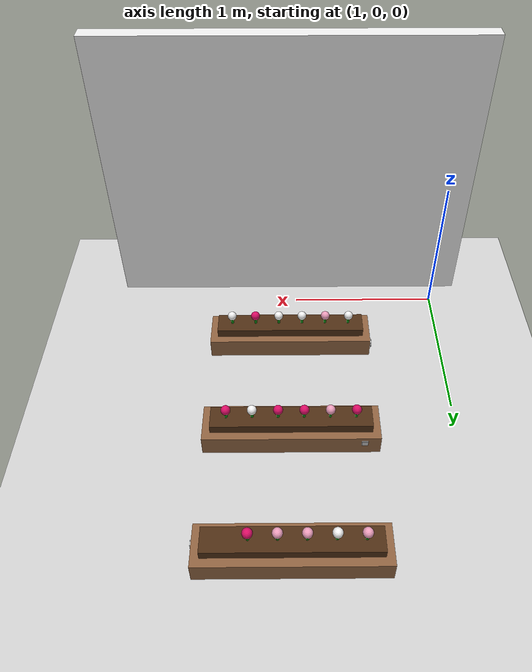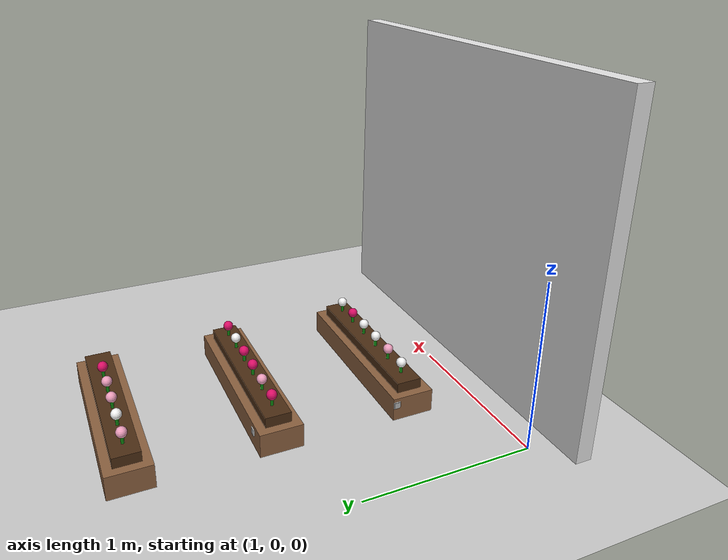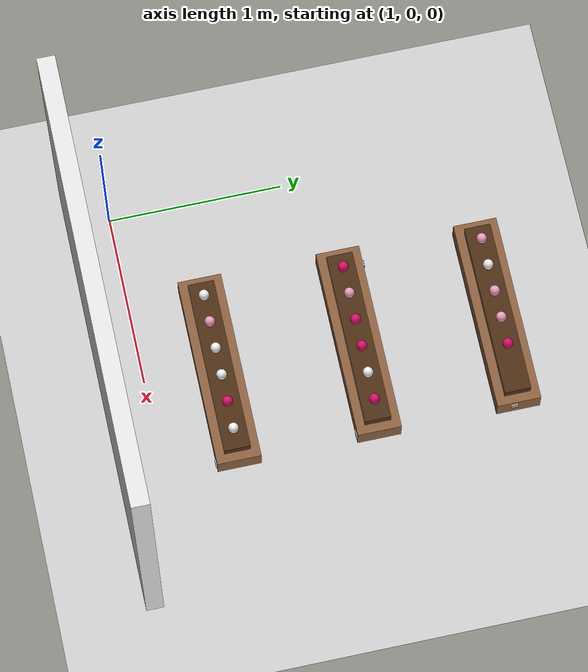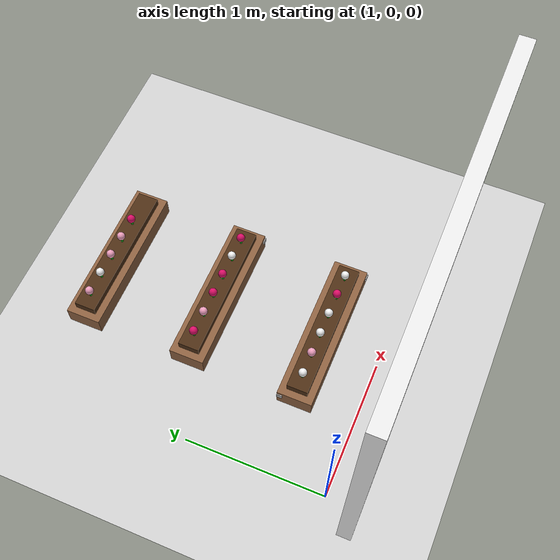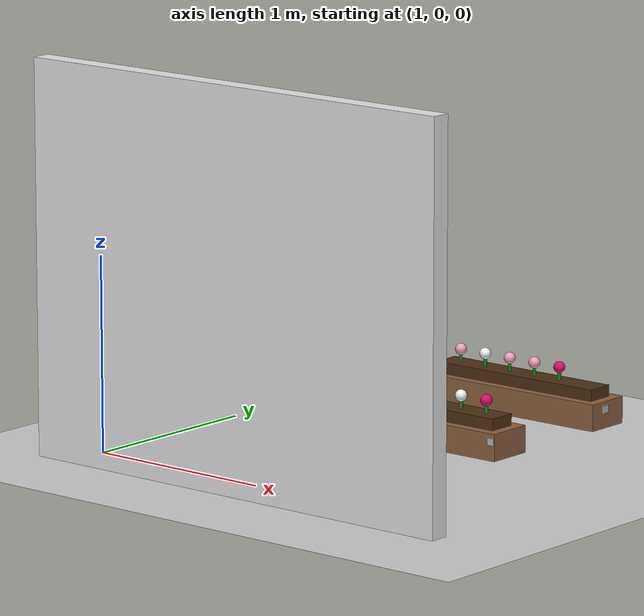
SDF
<sdf version="1.6">
 <world name="greenhouse">
  <include><uri>model://sun</uri></include>
  <include><uri>model://ground_plane</uri></include>
  <model name="wall_south">
   <static>true</static>
   <pose>2.0500 -0.2000 1.0000 0 0 0</pose>
   <link name="link">
    <collision name="collision"><geometry><box><size>2.5000 0.1000 2.0000</size></box></geometry></collision>
    <visual name="visual">
     <geometry><box><size>2.5000 0.1000 2.0000</size></box></geometry>
     <material><ambient>0.85 0.85 0.85 1</ambient><diffuse>0.90 0.90 0.90 1</diffuse></material>
    </visual>
   </link>
  </model>
  <model name="table10">
   <static>true</static>
   <pose>2.0500 0.4250 0.0700 0 0 0</pose>
   <link name="link">
    <collision name="collision"><geometry><box><size>1.1000 0.2500 0.1400</size></box></geometry></collision>
    <visual name="visual">
     <geometry><box><size>1.1000 0.2500 0.1400</size></box></geometry>
     <material><ambient>0.45 0.30 0.20 1</ambient><diffuse>0.55 0.38 0.25 1</diffuse></material>
    </visual>
   </link>
  </model>
  <model name="table8">
   <static>true</static>
   <pose>2.0500 2.0250 0.0700 0 0 0</pose>
   <link name="link">
    <collision name="collision"><geometry><box><size>1.1000 0.2500 0.1400</size></box></geometry></collision>
    <visual name="visual">
     <geometry><box><size>1.1000 0.2500 0.1400</size></box></geometry>
     <material><ambient>0.45 0.30 0.20 1</ambient><diffuse>0.55 0.38 0.25 1</diffuse></material>
    </visual>
   </link>
  </model>
  <model name="table9">
   <static>true</static>
   <pose>2.0500 1.2250 0.0700 0 0 0</pose>
   <link name="link">
    <collision name="collision"><geometry><box><size>1.1000 0.2500 0.1400</size></box></geometry></collision>
    <visual name="visual">
     <geometry><box><size>1.1000 0.2500 0.1400</size></box></geometry>
     <material><ambient>0.45 0.30 0.20 1</ambient><diffuse>0.55 0.38 0.25 1</diffuse></material>
    </visual>
   </link>
  </model>
  <model name="trough_table_1">
   <static>true</static>
   <pose>2.0500 0.4250 0.1700 0 0 0</pose>
   <link name="link">
    <visual name="visual">
     <geometry><box><size>1.0000 0.1500 0.0600</size></box></geometry>
     <material><ambient>0.20 0.12 0.05 1</ambient><diffuse>0.30 0.18 0.08 1</diffuse></material>
    </visual>
   </link>
  </model>
  <model name="flower_6_white">
   <static>true</static>
   <pose>1.6500 0.4250 0 0 0 0</pose>
   <link name="link">
    <visual name="stem">
     <pose>0 0 0.2250 0 0 0</pose>
     <geometry><cylinder><radius>0.009</radius><length>0.0500</length></cylinder></geometry>
     <material><ambient>0.05 0.40 0.05 1</ambient><diffuse>0.05 0.52 0.05 1</diffuse></material>
    </visual>
    <visual name="blossom">
     <pose>0 0 0.2665 0 0 0</pose>
     <geometry><sphere><radius>0.0300</radius></sphere></geometry>
     <material>
      <ambient>0.42 0.42 0.42 1</ambient>
      <diffuse>0.95 0.95 0.95 1</diffuse>
      <emissive>0.40 0.40 0.40 1</emissive>
     </material>
    </visual>
   </link>
  </model>
  <model name="flower_7_pink">
   <static>true</static>
   <pose>1.8100 0.4250 0 0 0 0</pose>
   <link name="link">
    <visual name="stem">
     <pose>0 0 0.2250 0 0 0</pose>
     <geometry><cylinder><radius>0.009</radius><length>0.0500</length></cylinder></geometry>
     <material><ambient>0.05 0.40 0.05 1</ambient><diffuse>0.05 0.52 0.05 1</diffuse></material>
    </visual>
    <visual name="blossom">
     <pose>0 0 0.2665 0 0 0</pose>
     <geometry><sphere><radius>0.0300</radius></sphere></geometry>
     <material>
      <ambient>0.40 0.26 0.31 1</ambient>
      <diffuse>0.93 0.62 0.74 1</diffuse>
      <emissive>0.18 0.06 0.11 1</emissive>
     </material>
    </visual>
   </link>
  </model>
  <model name="flower_8_white">
   <static>true</static>
   <pose>1.9700 0.4250 0 0 0 0</pose>
   <link name="link">
    <visual name="stem">
     <pose>0 0 0.2250 0 0 0</pose>
     <geometry><cylinder><radius>0.009</radius><length>0.0500</length></cylinder></geometry>
     <material><ambient>0.05 0.40 0.05 1</ambient><diffuse>0.05 0.52 0.05 1</diffuse></material>
    </visual>
    <visual name="blossom">
     <pose>0 0 0.2665 0 0 0</pose>
     <geometry><sphere><radius>0.0300</radius></sphere></geometry>
     <material>
      <ambient>0.42 0.42 0.42 1</ambient>
      <diffuse>0.95 0.95 0.95 1</diffuse>
      <emissive>0.40 0.40 0.40 1</emissive>
     </material>
    </visual>
   </link>
  </model>
  <model name="flower_9_white">
   <static>true</static>
   <pose>2.1300 0.4250 0 0 0 0</pose>
   <link name="link">
    <visual name="stem">
     <pose>0 0 0.2250 0 0 0</pose>
     <geometry><cylinder><radius>0.009</radius><length>0.0500</length></cylinder></geometry>
     <material><ambient>0.05 0.40 0.05 1</ambient><diffuse>0.05 0.52 0.05 1</diffuse></material>
    </visual>
    <visual name="blossom">
     <pose>0 0 0.2665 0 0 0</pose>
     <geometry><sphere><radius>0.0300</radius></sphere></geometry>
     <material>
      <ambient>0.42 0.42 0.42 1</ambient>
      <diffuse>0.95 0.95 0.95 1</diffuse>
      <emissive>0.40 0.40 0.40 1</emissive>
     </material>
    </visual>
   </link>
  </model>
  <model name="flower_10_red">
   <static>true</static>
   <pose>2.2900 0.4250 0 0 0 0</pose>
   <link name="link">
    <visual name="stem">
     <pose>0 0 0.2250 0 0 0</pose>
     <geometry><cylinder><radius>0.009</radius><length>0.0500</length></cylinder></geometry>
     <material><ambient>0.05 0.40 0.05 1</ambient><diffuse>0.05 0.52 0.05 1</diffuse></material>
    </visual>
    <visual name="blossom">
     <pose>0 0 0.2665 0 0 0</pose>
     <geometry><sphere><radius>0.0300</radius></sphere></geometry>
     <material>
      <ambient>0.32 0.02 0.15 1</ambient>
      <diffuse>0.86 0.05 0.40 1</diffuse>
      <emissive>0.40 0.00 0.18 1</emissive>
     </material>
    </visual>
   </link>
  </model>
  <model name="flower_11_white">
   <static>true</static>
   <pose>2.4500 0.4250 0 0 0 0</pose>
   <link name="link">
    <visual name="stem">
     <pose>0 0 0.2250 0 0 0</pose>
     <geometry><cylinder><radius>0.009</radius><length>0.0500</length></cylinder></geometry>
     <material><ambient>0.05 0.40 0.05 1</ambient><diffuse>0.05 0.52 0.05 1</diffuse></material>
    </visual>
    <visual name="blossom">
     <pose>0 0 0.2665 0 0 0</pose>
     <geometry><sphere><radius>0.0300</radius></sphere></geometry>
     <material>
      <ambient>0.42 0.42 0.42 1</ambient>
      <diffuse>0.95 0.95 0.95 1</diffuse>
      <emissive>0.40 0.40 0.40 1</emissive>
     </material>
    </visual>
   </link>
  </model>
  <model name="trough_table_8">
   <static>true</static>
   <pose>2.0500 2.0250 0.1700 0 0 0</pose>
   <link name="link">
    <visual name="visual">
     <geometry><box><size>1.0000 0.1500 0.0600</size></box></geometry>
     <material><ambient>0.20 0.12 0.05 1</ambient><diffuse>0.30 0.18 0.08 1</diffuse></material>
    </visual>
   </link>
  </model>
  <model name="flower_50_pink">
   <static>true</static>
   <pose>1.6500 2.0250 0 0 0 0</pose>
   <link name="link">
    <visual name="stem">
     <pose>0 0 0.2250 0 0 0</pose>
     <geometry><cylinder><radius>0.009</radius><length>0.0500</length></cylinder></geometry>
     <material><ambient>0.05 0.40 0.05 1</ambient><diffuse>0.05 0.52 0.05 1</diffuse></material>
    </visual>
    <visual name="blossom">
     <pose>0 0 0.2665 0 0 0</pose>
     <geometry><sphere><radius>0.0300</radius></sphere></geometry>
     <material>
      <ambient>0.40 0.26 0.31 1</ambient>
      <diffuse>0.93 0.62 0.74 1</diffuse>
      <emissive>0.18 0.06 0.11 1</emissive>
     </material>
    </visual>
   </link>
  </model>
  <model name="flower_51_white">
   <static>true</static>
   <pose>1.8100 2.0250 0 0 0 0</pose>
   <link name="link">
    <visual name="stem">
     <pose>0 0 0.2250 0 0 0</pose>
     <geometry><cylinder><radius>0.009</radius><length>0.0500</length></cylinder></geometry>
     <material><ambient>0.05 0.40 0.05 1</ambient><diffuse>0.05 0.52 0.05 1</diffuse></material>
    </visual>
    <visual name="blossom">
     <pose>0 0 0.2665 0 0 0</pose>
     <geometry><sphere><radius>0.0300</radius></sphere></geometry>
     <material>
      <ambient>0.42 0.42 0.42 1</ambient>
      <diffuse>0.95 0.95 0.95 1</diffuse>
      <emissive>0.40 0.40 0.40 1</emissive>
     </material>
    </visual>
   </link>
  </model>
  <model name="flower_52_pink">
   <static>true</static>
   <pose>1.9700 2.0250 0 0 0 0</pose>
   <link name="link">
    <visual name="stem">
     <pose>0 0 0.2250 0 0 0</pose>
     <geometry><cylinder><radius>0.009</radius><length>0.0500</length></cylinder></geometry>
     <material><ambient>0.05 0.40 0.05 1</ambient><diffuse>0.05 0.52 0.05 1</diffuse></material>
    </visual>
    <visual name="blossom">
     <pose>0 0 0.2665 0 0 0</pose>
     <geometry><sphere><radius>0.0300</radius></sphere></geometry>
     <material>
      <ambient>0.40 0.26 0.31 1</ambient>
      <diffuse>0.93 0.62 0.74 1</diffuse>
      <emissive>0.18 0.06 0.11 1</emissive>
     </material>
    </visual>
   </link>
  </model>
  <model name="flower_53_pink">
   <static>true</static>
   <pose>2.1300 2.0250 0 0 0 0</pose>
   <link name="link">
    <visual name="stem">
     <pose>0 0 0.2250 0 0 0</pose>
     <geometry><cylinder><radius>0.009</radius><length>0.0500</length></cylinder></geometry>
     <material><ambient>0.05 0.40 0.05 1</ambient><diffuse>0.05 0.52 0.05 1</diffuse></material>
    </visual>
    <visual name="blossom">
     <pose>0 0 0.2665 0 0 0</pose>
     <geometry><sphere><radius>0.0300</radius></sphere></geometry>
     <material>
      <ambient>0.40 0.26 0.31 1</ambient>
      <diffuse>0.93 0.62 0.74 1</diffuse>
      <emissive>0.18 0.06 0.11 1</emissive>
     </material>
    </visual>
   </link>
  </model>
  <model name="flower_54_red">
   <static>true</static>
   <pose>2.2900 2.0250 0 0 0 0</pose>
   <link name="link">
    <visual name="stem">
     <pose>0 0 0.2250 0 0 0</pose>
     <geometry><cylinder><radius>0.009</radius><length>0.0500</length></cylinder></geometry>
     <material><ambient>0.05 0.40 0.05 1</ambient><diffuse>0.05 0.52 0.05 1</diffuse></material>
    </visual>
    <visual name="blossom">
     <pose>0 0 0.2665 0 0 0</pose>
     <geometry><sphere><radius>0.0300</radius></sphere></geometry>
     <material>
      <ambient>0.32 0.02 0.15 1</ambient>
      <diffuse>0.86 0.05 0.40 1</diffuse>
      <emissive>0.40 0.00 0.18 1</emissive>
     </material>
    </visual>
   </link>
  </model>
  <model name="trough_table_9">
   <static>true</static>
   <pose>2.0500 1.2250 0.1700 0 0 0</pose>
   <link name="link">
    <visual name="visual">
     <geometry><box><size>1.0000 0.1500 0.0600</size></box></geometry>
     <material><ambient>0.20 0.12 0.05 1</ambient><diffuse>0.30 0.18 0.08 1</diffuse></material>
    </visual>
   </link>
  </model>
  <model name="flower_56_red">
   <static>true</static>
   <pose>1.6500 1.2250 0 0 0 0</pose>
   <link name="link">
    <visual name="stem">
     <pose>0 0 0.2250 0 0 0</pose>
     <geometry><cylinder><radius>0.009</radius><length>0.0500</length></cylinder></geometry>
     <material><ambient>0.05 0.40 0.05 1</ambient><diffuse>0.05 0.52 0.05 1</diffuse></material>
    </visual>
    <visual name="blossom">
     <pose>0 0 0.2665 0 0 0</pose>
     <geometry><sphere><radius>0.0300</radius></sphere></geometry>
     <material>
      <ambient>0.32 0.02 0.15 1</ambient>
      <diffuse>0.86 0.05 0.40 1</diffuse>
      <emissive>0.40 0.00 0.18 1</emissive>
     </material>
    </visual>
   </link>
  </model>
  <model name="flower_57_pink">
   <static>true</static>
   <pose>1.8100 1.2250 0 0 0 0</pose>
   <link name="link">
    <visual name="stem">
     <pose>0 0 0.2250 0 0 0</pose>
     <geometry><cylinder><radius>0.009</radius><length>0.0500</length></cylinder></geometry>
     <material><ambient>0.05 0.40 0.05 1</ambient><diffuse>0.05 0.52 0.05 1</diffuse></material>
    </visual>
    <visual name="blossom">
     <pose>0 0 0.2665 0 0 0</pose>
     <geometry><sphere><radius>0.0300</radius></sphere></geometry>
     <material>
      <ambient>0.40 0.26 0.31 1</ambient>
      <diffuse>0.93 0.62 0.74 1</diffuse>
      <emissive>0.18 0.06 0.11 1</emissive>
     </material>
    </visual>
   </link>
  </model>
  <model name="flower_58_red">
   <static>true</static>
   <pose>1.9700 1.2250 0 0 0 0</pose>
   <link name="link">
    <visual name="stem">
     <pose>0 0 0.2250 0 0 0</pose>
     <geometry><cylinder><radius>0.009</radius><length>0.0500</length></cylinder></geometry>
     <material><ambient>0.05 0.40 0.05 1</ambient><diffuse>0.05 0.52 0.05 1</diffuse></material>
    </visual>
    <visual name="blossom">
     <pose>0 0 0.2665 0 0 0</pose>
     <geometry><sphere><radius>0.0300</radius></sphere></geometry>
     <material>
      <ambient>0.32 0.02 0.15 1</ambient>
      <diffuse>0.86 0.05 0.40 1</diffuse>
      <emissive>0.40 0.00 0.18 1</emissive>
     </material>
    </visual>
   </link>
  </model>
  <model name="flower_59_red">
   <static>true</static>
   <pose>2.1300 1.2250 0 0 0 0</pose>
   <link name="link">
    <visual name="stem">
     <pose>0 0 0.2250 0 0 0</pose>
     <geometry><cylinder><radius>0.009</radius><length>0.0500</length></cylinder></geometry>
     <material><ambient>0.05 0.40 0.05 1</ambient><diffuse>0.05 0.52 0.05 1</diffuse></material>
    </visual>
    <visual name="blossom">
     <pose>0 0 0.2665 0 0 0</pose>
     <geometry><sphere><radius>0.0300</radius></sphere></geometry>
     <material>
      <ambient>0.32 0.02 0.15 1</ambient>
      <diffuse>0.86 0.05 0.40 1</diffuse>
      <emissive>0.40 0.00 0.18 1</emissive>
     </material>
    </visual>
   </link>
  </model>
  <model name="flower_60_white">
   <static>true</static>
   <pose>2.2900 1.2250 0 0 0 0</pose>
   <link name="link">
    <visual name="stem">
     <pose>0 0 0.2250 0 0 0</pose>
     <geometry><cylinder><radius>0.009</radius><length>0.0500</length></cylinder></geometry>
     <material><ambient>0.05 0.40 0.05 1</ambient><diffuse>0.05 0.52 0.05 1</diffuse></material>
    </visual>
    <visual name="blossom">
     <pose>0 0 0.2665 0 0 0</pose>
     <geometry><sphere><radius>0.0300</radius></sphere></geometry>
     <material>
      <ambient>0.42 0.42 0.42 1</ambient>
      <diffuse>0.95 0.95 0.95 1</diffuse>
      <emissive>0.40 0.40 0.40 1</emissive>
     </material>
    </visual>
   </link>
  </model>
  <model name="flower_61_red">
   <static>true</static>
   <pose>2.4500 1.2250 0 0 0 0</pose>
   <link name="link">
    <visual name="stem">
     <pose>0 0 0.2250 0 0 0</pose>
     <geometry><cylinder><radius>0.009</radius><length>0.0500</length></cylinder></geometry>
     <material><ambient>0.05 0.40 0.05 1</ambient><diffuse>0.05 0.52 0.05 1</diffuse></material>
    </visual>
    <visual name="blossom">
     <pose>0 0 0.2665 0 0 0</pose>
     <geometry><sphere><radius>0.0300</radius></sphere></geometry>
     <material>
      <ambient>0.32 0.02 0.15 1</ambient>
      <diffuse>0.86 0.05 0.40 1</diffuse>
      <emissive>0.40 0.00 0.18 1</emissive>
     </material>
    </visual>
   </link>
  </model>
  <model name="apriltag_1">
   <static>true</static>
   <pose>1.6000 1.3550 0.1000 0 0 1.570796</pose>
   <link name="link">
    <collision name="collision"><geometry><box><size>0.0050 0.0400 0.0400</size></box></geometry></collision>
    <visual name="bg_visual">
     <geometry><box><size>0.0050 0.0400 0.0400</size></box></geometry>
     <material><ambient>1.0 1.0 1.0 1</ambient><diffuse>1.0 1.0 1.0 1</diffuse></material>
    </visual>
    <visual name="tag_visual">
     <pose>0.0035 0 0 0 1.57079 0</pose>
     <geometry><plane><normal>0 0 1</normal><size>0.0360 0.0360</size></plane></geometry>
     <material>
      <script>
       <uri>model://apriltags/materials/scripts</uri>
       <uri>model://apriltags/materials/textures</uri>
       <name>AprilTag/Tag36h11_1</name>
      </script>
     </material>
    </visual>
   </link>
  </model>
  <model name="apriltag_2">
   <static>true</static>
   <pose>2.5800 0.2950 0.1000 0 0 -1.570796</pose>
   <link name="link">
    <collision name="collision"><geometry><box><size>0.0050 0.0400 0.0400</size></box></geometry></collision>
    <visual name="bg_visual">
     <geometry><box><size>0.0050 0.0400 0.0400</size></box></geometry>
     <material><ambient>1.0 1.0 1.0 1</ambient><diffuse>1.0 1.0 1.0 1</diffuse></material>
    </visual>
    <visual name="tag_visual">
     <pose>0.0035 0 0 0 1.57079 0</pose>
     <geometry><plane><normal>0 0 1</normal><size>0.0360 0.0360</size></plane></geometry>
     <material>
      <script>
       <uri>model://apriltags/materials/scripts</uri>
       <uri>model://apriltags/materials/textures</uri>
       <name>AprilTag/Tag36h11_2</name>
      </script>
     </material>
    </visual>
   </link>
  </model>
  <model name="apriltag_5">
   <static>true</static>
   <pose>2.6050 2.0000 0.1000 0 0 0.000000</pose>
   <link name="link">
    <collision name="collision"><geometry><box><size>0.0050 0.0400 0.0400</size></box></geometry></collision>
    <visual name="bg_visual">
     <geometry><box><size>0.0050 0.0400 0.0400</size></box></geometry>
     <material><ambient>1.0 1.0 1.0 1</ambient><diffuse>1.0 1.0 1.0 1</diffuse></material>
    </visual>
    <visual name="tag_visual">
     <pose>0.0035 0 0 0 1.57079 0</pose>
     <geometry><plane><normal>0 0 1</normal><size>0.0360 0.0360</size></plane></geometry>
     <material>
      <script>
       <uri>model://apriltags/materials/scripts</uri>
       <uri>model://apriltags/materials/textures</uri>
       <name>AprilTag/Tag36h11_5</name>
      </script>
     </material>
    </visual>
   </link>
  </model>
  <model name="apriltag_17">
   <static>true</static>
   <pose>2.5800 1.0950 0.1000 0 0 -1.570796</pose>
   <link name="link">
    <collision name="collision"><geometry><box><size>0.0050 0.0400 0.0400</size></box></geometry></collision>
    <visual name="bg_visual">
     <geometry><box><size>0.0050 0.0400 0.0400</size></box></geometry>
     <material><ambient>1.0 1.0 1.0 1</ambient><diffuse>1.0 1.0 1.0 1</diffuse></material>
    </visual>
    <visual name="tag_visual">
     <pose>0.0035 0 0 0 1.57079 0</pose>
     <geometry><plane><normal>0 0 1</normal><size>0.0360 0.0360</size></plane></geometry>
     <material>
      <script>
       <uri>model://apriltags/materials/scripts</uri>
       <uri>model://apriltags/materials/textures</uri>
       <name>AprilTag/Tag36h11_17</name>
      </script>
     </material>
    </visual>
   </link>
  </model>
  <model name="apriltag_19">
   <static>true</static>
   <pose>1.4950 0.5300 0.1000 0 0 3.141593</pose>
   <link name="link">
    <collision name="collision"><geometry><box><size>0.0050 0.0400 0.0400</size></box></geometry></collision>
    <visual name="bg_visual">
     <geometry><box><size>0.0050 0.0400 0.0400</size></box></geometry>
     <material><ambient>1.0 1.0 1.0 1</ambient><diffuse>1.0 1.0 1.0 1</diffuse></material>
    </visual>
    <visual name="tag_visual">
     <pose>0.0035 0 0 0 1.57079 0</pose>
     <geometry><plane><normal>0 0 1</normal><size>0.0360 0.0360</size></plane></geometry>
     <material>
      <script>
       <uri>model://apriltags/materials/scripts</uri>
       <uri>model://apriltags/materials/textures</uri>
       <name>AprilTag/Tag36h11_19</name>
      </script>
     </material>
    </visual>
   </link>
  </model>
 </world>
</sdf>
